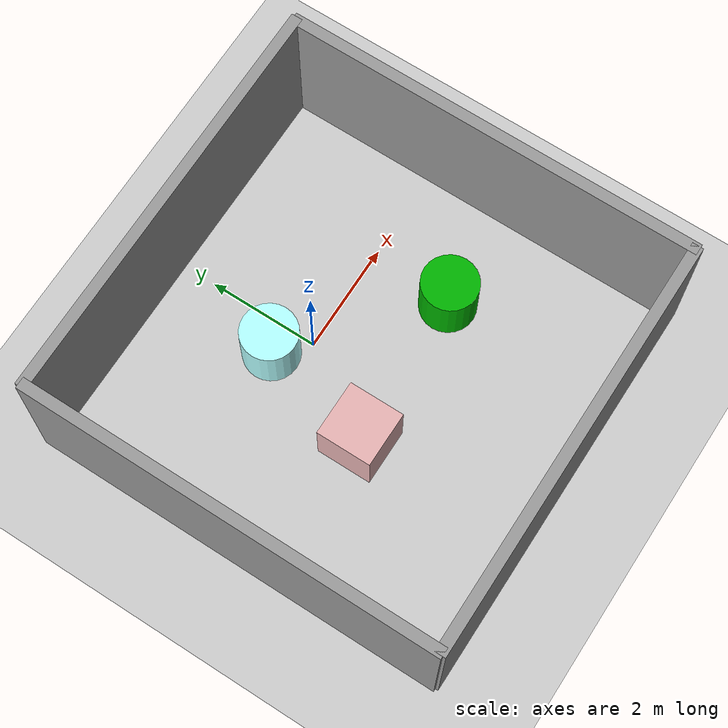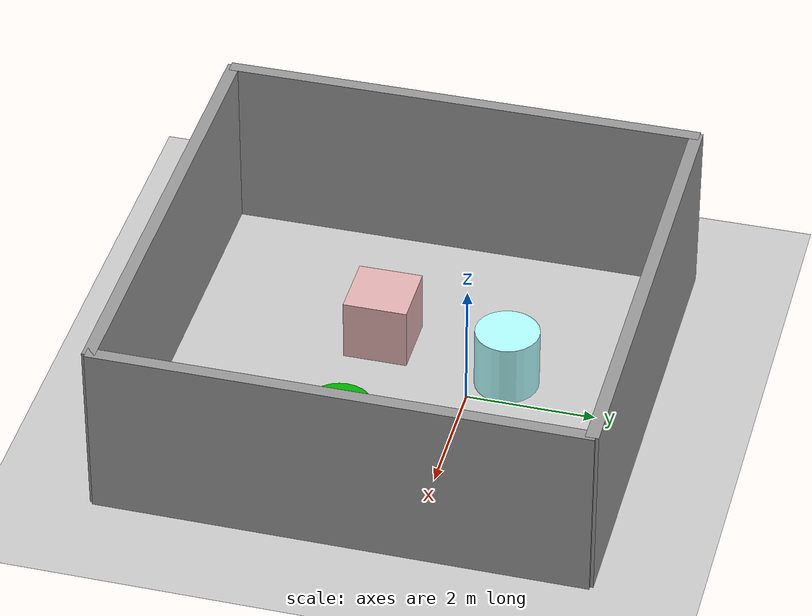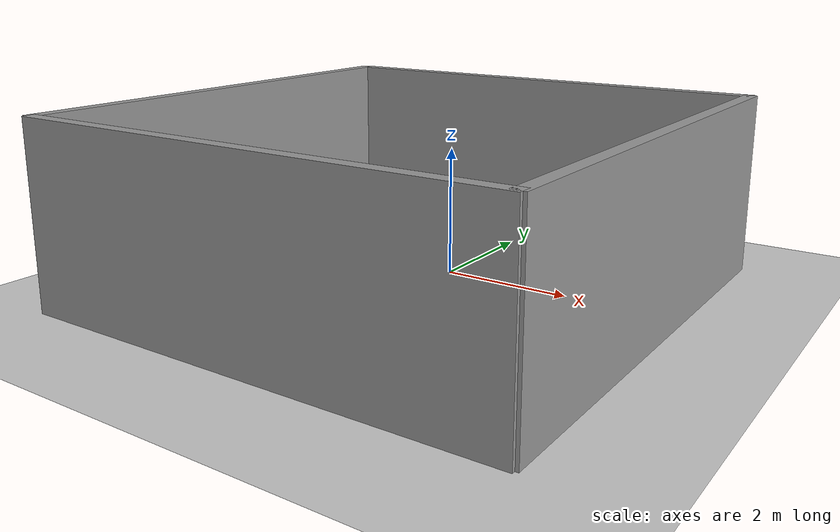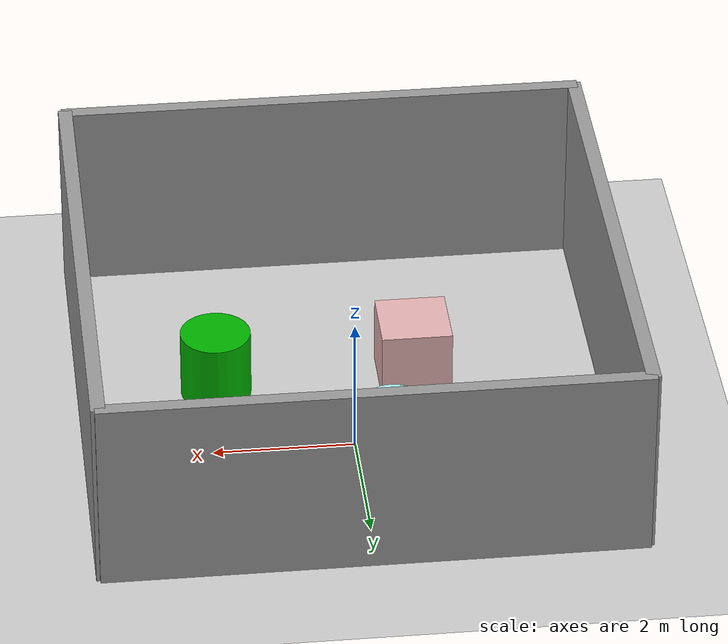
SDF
<sdf version="1.6">
 <world name="default">
  <light name="sun" type="directional">
   <pose>0 0 10 0 -0 0</pose>
   <diffuse>0.8 0.8 0.8 1</diffuse>
   <specular>0.2 0.2 0.2 1</specular>
   <attenuation>
    <range>1000</range>
    <constant>0.9</constant>
    <linear>0.01</linear>
    <quadratic>0.001</quadratic>
   </attenuation>
   <direction>-0.5 0.1 -0.9</direction>
  </light>
  <model name="ground_plane">
   <static>1</static>
   <link name="link">
    <collision name="collision">
     <geometry><plane><normal>0 0 1</normal><size>100 100</size></plane></geometry>
     <surface>
      <contact><collide_bitmask>65535</collide_bitmask></contact>
      <friction><ode><mu>100</mu><mu2>50</mu2></ode></friction>
     </surface>
    </collision>
    <visual name="visual">
     <cast_shadows>0</cast_shadows>
     <geometry><plane><normal>0 0 1</normal><size>100 100</size></plane></geometry>
     <material>
      <script><uri>file://media/materials/scripts/gazebo.material</uri><name>Gazebo/Grey</name></script>
     </material>
    </visual>
   </link>
  </model>
  <gravity>0 0 -9.8</gravity>
  <magnetic_field>6e-06 2.3e-05 -4.2e-05</magnetic_field>
  <atmosphere type="adiabatic"/>
  <physics name="default_physics" default="0" type="ode">
   <max_step_size>0.001</max_step_size>
   <real_time_factor>1</real_time_factor>
   <real_time_update_rate>1000</real_time_update_rate>
  </physics>
  <scene><ambient>0.4 0.4 0.4 1</ambient><background>0.7 0.7 0.7 1</background><shadows>1</shadows></scene>
  <audio><device>default</device></audio>
  <spherical_coordinates>
   <surface_model>EARTH_WGS84</surface_model>
   <latitude_deg>0</latitude_deg>
   <longitude_deg>0</longitude_deg>
   <elevation>0</elevation>
   <heading_deg>0</heading_deg>
  </spherical_coordinates>
  <model name="unit_cylinder">
   <link name="link">
    <inertial>
     <mass>1</mass>
     <inertia><ixx>0.145833</ixx><ixy>0</ixy><ixz>0</ixz><iyy>0.145833</iyy><iyz>0</iyz><izz>0.125</izz></inertia>
    </inertial>
    <visual name="visual">
     <geometry><cylinder><radius>0.5</radius><length>1</length></cylinder></geometry>
     <material>
      <script><name>Gazebo/Grey</name><uri>file://media/materials/scripts/gazebo.material</uri></script>
      <diffuse>0 0.7 0 0</diffuse>
      <shader type="vertex"><normal_map>__default__</normal_map></shader>
      <ambient>0.3 0.8 0.3 1</ambient>
      <specular>0.01 0.41 0.01 1</specular>
      <emissive>0 0.6 0 1</emissive>
     </material>
    </visual>
    <collision name="collision">
     <geometry><cylinder><radius>0.5</radius><length>1</length></cylinder></geometry>
     <surface>
      <friction>
       <ode><mu>1</mu><mu2>1</mu2><fdir1>0 0 0</fdir1><slip1>0</slip1><slip2>0</slip2></ode>
       <torsional>
        <coefficient>1</coefficient>
        <patch_radius>0</patch_radius>
        <surface_radius>0</surface_radius>
        <use_patch_radius>1</use_patch_radius>
        <ode><slip>0</slip></ode>
       </torsional>
      </friction>
      <bounce><restitution_coefficient>0</restitution_coefficient><threshold>1e+06</threshold></bounce>
      <contact>
       <collide_without_contact>0</collide_without_contact>
       <collide_without_contact_bitmask>1</collide_without_contact_bitmask>
       <collide_bitmask>1</collide_bitmask>
       <ode>
        <soft_cfm>0</soft_cfm>
        <soft_erp>0.2</soft_erp>
        <kp>1e+13</kp>
        <kd>1</kd>
        <max_vel>0.01</max_vel>
        <min_depth>0</min_depth>
       </ode>
       <bullet>
        <split_impulse>1</split_impulse>
        <split_impulse_penetration_threshold>-0.01</split_impulse_penetration_threshold>
        <soft_cfm>0</soft_cfm>
        <soft_erp>0.2</soft_erp>
        <kp>1e+13</kp>
        <kd>1</kd>
       </bullet>
      </contact>
     </surface>
    </collision>
   </link>
   <static>0</static>
   <pose>1.82437 -1.50466 0.499999 0 -0 0</pose>
  </model>
  <model name="unit_box">
   <link name="link">
    <inertial>
     <mass>1</mass>
     <inertia>
      <ixx>0.166667</ixx>
      <ixy>0</ixy>
      <ixz>0</ixz>
      <iyy>0.166667</iyy>
      <iyz>0</iyz>
      <izz>0.166667</izz>
     </inertia>
    </inertial>
    <visual name="visual">
     <geometry><box><size>1 1 1</size></box></geometry>
     <material>
      <script><name>Gazebo/Grey</name><uri>file://media/materials/scripts/gazebo.material</uri></script>
      <shader type="vertex"><normal_map>__default__</normal_map></shader>
      <ambient>1 0.3 0.3 1</ambient>
      <diffuse>0.9 0.7 0.7 1</diffuse>
      <specular>0.71 0.01 0.01 1</specular>
      <emissive>0.5 0 0 1</emissive>
     </material>
    </visual>
    <collision name="collision">
     <geometry><box><size>1 1 1</size></box></geometry>
     <surface>
      <friction>
       <ode><mu>1</mu><mu2>1</mu2><fdir1>0 0 0</fdir1><slip1>0</slip1><slip2>0</slip2></ode>
       <torsional>
        <coefficient>1</coefficient>
        <patch_radius>0</patch_radius>
        <surface_radius>0</surface_radius>
        <use_patch_radius>1</use_patch_radius>
        <ode><slip>0</slip></ode>
       </torsional>
      </friction>
      <bounce><restitution_coefficient>0</restitution_coefficient><threshold>1e+06</threshold></bounce>
      <contact>
       <collide_without_contact>0</collide_without_contact>
       <collide_without_contact_bitmask>1</collide_without_contact_bitmask>
       <collide_bitmask>1</collide_bitmask>
       <ode>
        <soft_cfm>0</soft_cfm>
        <soft_erp>0.2</soft_erp>
        <kp>1e+13</kp>
        <kd>1</kd>
        <max_vel>0.01</max_vel>
        <min_depth>0</min_depth>
       </ode>
       <bullet>
        <split_impulse>1</split_impulse>
        <split_impulse_penetration_threshold>-0.01</split_impulse_penetration_threshold>
        <soft_cfm>0</soft_cfm>
        <soft_erp>0.2</soft_erp>
        <kp>1e+13</kp>
        <kd>1</kd>
       </bullet>
      </contact>
     </surface>
    </collision>
   </link>
   <static>0</static>
   <pose>-1.00001 -1.57385 0.499995 0 -1e-05 0</pose>
  </model>
  <model name="unit_cylinder22">
   <link name="link">
    <inertial>
     <mass>1</mass>
     <inertia><ixx>0.145833</ixx><ixy>0</ixy><ixz>0</ixz><iyy>0.145833</iyy><iyz>0</iyz><izz>0.125</izz></inertia>
    </inertial>
    <visual name="visual">
     <geometry><cylinder><radius>0.5</radius><length>1</length></cylinder></geometry>
     <material>
      <script><name>Gazebo/Grey</name><uri>file://media/materials/scripts/gazebo.material</uri></script>
      <ambient>0 1 1 0</ambient>
      <shader type="vertex"><normal_map>__default__</normal_map></shader>
      <diffuse>0.7 1 1 1</diffuse>
      <specular>0.01 1 1 1</specular>
      <emissive>0 1 1 1</emissive>
     </material>
    </visual>
    <collision name="collision">
     <geometry><cylinder><radius>0.5</radius><length>1</length></cylinder></geometry>
     <surface>
      <friction>
       <ode><mu>1</mu><mu2>1</mu2><fdir1>0 0 0</fdir1><slip1>0</slip1><slip2>0</slip2></ode>
       <torsional>
        <coefficient>1</coefficient>
        <patch_radius>0</patch_radius>
        <surface_radius>0</surface_radius>
        <use_patch_radius>1</use_patch_radius>
        <ode><slip>0</slip></ode>
       </torsional>
      </friction>
      <bounce><restitution_coefficient>0</restitution_coefficient><threshold>1e+06</threshold></bounce>
      <contact>
       <collide_without_contact>0</collide_without_contact>
       <collide_without_contact_bitmask>1</collide_without_contact_bitmask>
       <collide_bitmask>1</collide_bitmask>
       <ode>
        <soft_cfm>0</soft_cfm>
        <soft_erp>0.2</soft_erp>
        <kp>1e+13</kp>
        <kd>1</kd>
        <max_vel>0.01</max_vel>
        <min_depth>0</min_depth>
       </ode>
       <bullet>
        <split_impulse>1</split_impulse>
        <split_impulse_penetration_threshold>-0.01</split_impulse_penetration_threshold>
        <soft_cfm>0</soft_cfm>
        <soft_erp>0.2</soft_erp>
        <kp>1e+13</kp>
        <kd>1</kd>
       </bullet>
      </contact>
     </surface>
    </collision>
   </link>
   <static>0</static>
   <pose>-0.492905 0.509699 0.499999 0 -0 0</pose>
  </model>
  <model name="grey_wall">
   <static>1</static>
   <link name="link">
    <pose>0 0 1.4 0 -0 0</pose>
    <collision name="collision"><geometry><box><size>7.5 0.2 2.8</size></box></geometry></collision>
    <visual name="visual">
     <cast_shadows>0</cast_shadows>
     <geometry><box><size>7.5 0.2 2.8</size></box></geometry>
     <material>
      <script>
       <uri>model://grey_wall/materials/scripts</uri>
       <uri>model://grey_wall/materials/textures</uri>
       <name>vrc/grey_wall</name>
      </script>
     </material>
    </visual>
   </link>
   <pose>0 -4.7 0 0 -0 0</pose>
  </model>
  <model name="grey_wall_0">
   <static>1</static>
   <link name="link">
    <pose>0 0 1.4 0 -0 0</pose>
    <collision name="collision"><geometry><box><size>7.5 0.2 2.8</size></box></geometry></collision>
    <visual name="visual">
     <cast_shadows>0</cast_shadows>
     <geometry><box><size>7.5 0.2 2.8</size></box></geometry>
     <material>
      <script>
       <uri>model://grey_wall/materials/scripts</uri>
       <uri>model://grey_wall/materials/textures</uri>
       <name>vrc/grey_wall</name>
      </script>
     </material>
    </visual>
   </link>
   <pose>0 2.7 0 0 -0 0</pose>
  </model>
  <model name="grey_wall_1">
   <static>1</static>
   <link name="link">
    <pose>0 0 1.4 0 -0 0</pose>
    <collision name="collision"><geometry><box><size>7.5 0.2 2.8</size></box></geometry></collision>
    <visual name="visual">
     <cast_shadows>0</cast_shadows>
     <geometry><box><size>7.5 0.2 2.8</size></box></geometry>
     <material>
      <script>
       <uri>model://grey_wall/materials/scripts</uri>
       <uri>model://grey_wall/materials/textures</uri>
       <name>vrc/grey_wall</name>
      </script>
     </material>
    </visual>
   </link>
   <pose>-3.7 -1 0 0 -0 1.57</pose>
  </model>
  <model name="grey_wall_2">
   <static>1</static>
   <link name="link">
    <pose>0 0 1.4 0 -0 0</pose>
    <collision name="collision"><geometry><box><size>7.5 0.2 2.8</size></box></geometry></collision>
    <visual name="visual">
     <cast_shadows>0</cast_shadows>
     <geometry><box><size>7.5 0.2 2.8</size></box></geometry>
     <material>
      <script>
       <uri>model://grey_wall/materials/scripts</uri>
       <uri>model://grey_wall/materials/textures</uri>
       <name>vrc/grey_wall</name>
      </script>
     </material>
    </visual>
   </link>
   <pose>3.7 -1 0 0 -0 1.57</pose>
  </model>
 </world>
</sdf>
